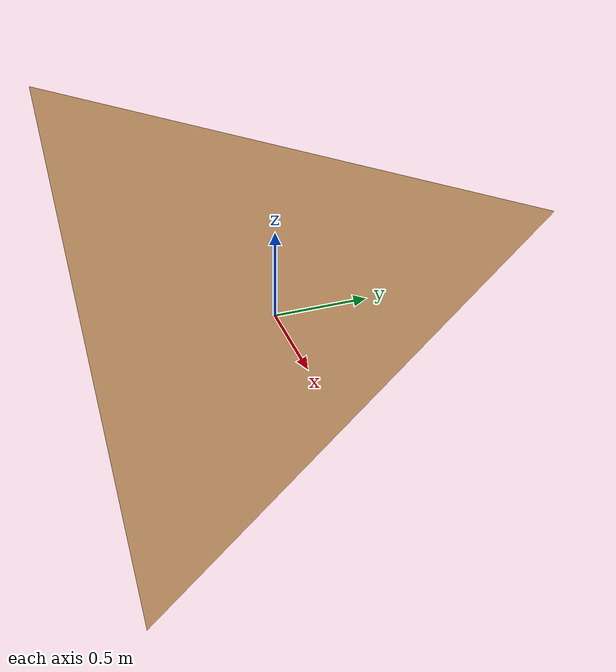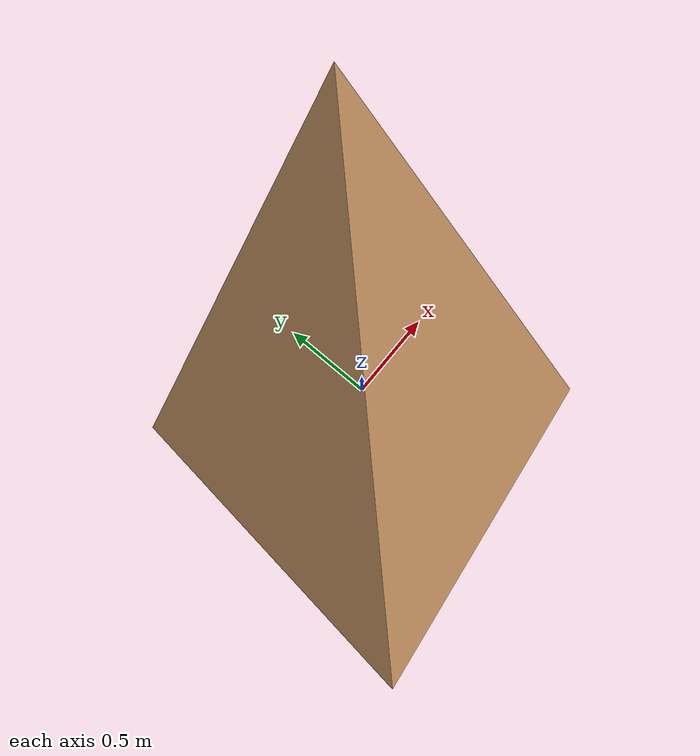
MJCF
<mujoco model="ant">
  <compiler angle="degree" coordinate="local" inertiafromgeom="true"/>
  <option timestep="0.01" iterations="4" />
  <custom>
    <!-- brax custom params -->
    <numeric data="0.0 0.0 0. 1.0 0.0 0.0 0.0 0.0 0.0 0. 1.0 0.0 0.0 0.0" name="init_qpos"/>
    <numeric data="1000" name="constraint_limit_stiffness"/>
    <numeric data="4000" name="constraint_stiffness"/>
    <numeric data="10" name="constraint_ang_damping"/>
    <numeric data="20" name="constraint_vel_damping"/>
    <numeric data="0.0" name="ang_damping"/>
    <numeric data="1" name="spring_mass_scale"/>
    <numeric data="1" name="spring_inertia_scale"/>
    <numeric data="15" name="solver_maxls"/>
  </custom>

  <default>
    <joint armature="1" damping="1" limited="true"/>
    <geom contype="0" conaffinity="0" condim="3" density="5.0" friction="1 0.5 0.5" rgba="0.8 0.6 0.4 1"/>
  </default>
  <asset>
    <texture builtin="gradient" height="100" rgb1="1 1 1" rgb2="0 0 0" type="skybox" width="100"/>
    <texture builtin="flat" height="1278" mark="cross" markrgb="1 1 1" name="texgeom" random="0.01" rgb1="0.8 0.6 0.4" rgb2="0.8 0.6 0.4" type="cube" width="127"/>
    <texture builtin="checker" height="100" name="texplane" rgb1="0 0 0" rgb2="0.8 0.8 0.8" type="2d" width="100"/>
    <material name="MatPlane" reflectance="0.5" shininess="1" specular="1" texrepeat="60 60" texture="texplane"/>
    <material name="geom" texture="texgeom" texuniform="true"/>
    <mesh name="tet" file="tet.obj"/>
  </asset>

  <worldbody>

    <body name="tet1" pos="0 0 0">
      <geom name="tet1" contype="1" conaffinity="1" pos="0 0 0" type="mesh" mesh="tet"/>
      <geom name="tet1_vis" contype="0" conaffinity="0" pos="0 0 0" type="mesh" mesh="tet"/>
      <joint armature="0" damping="0" limited="false" margin="0.01" name="root1" pos="0 0 0" type="free"/>
    </body>

  </worldbody>
</mujoco>
